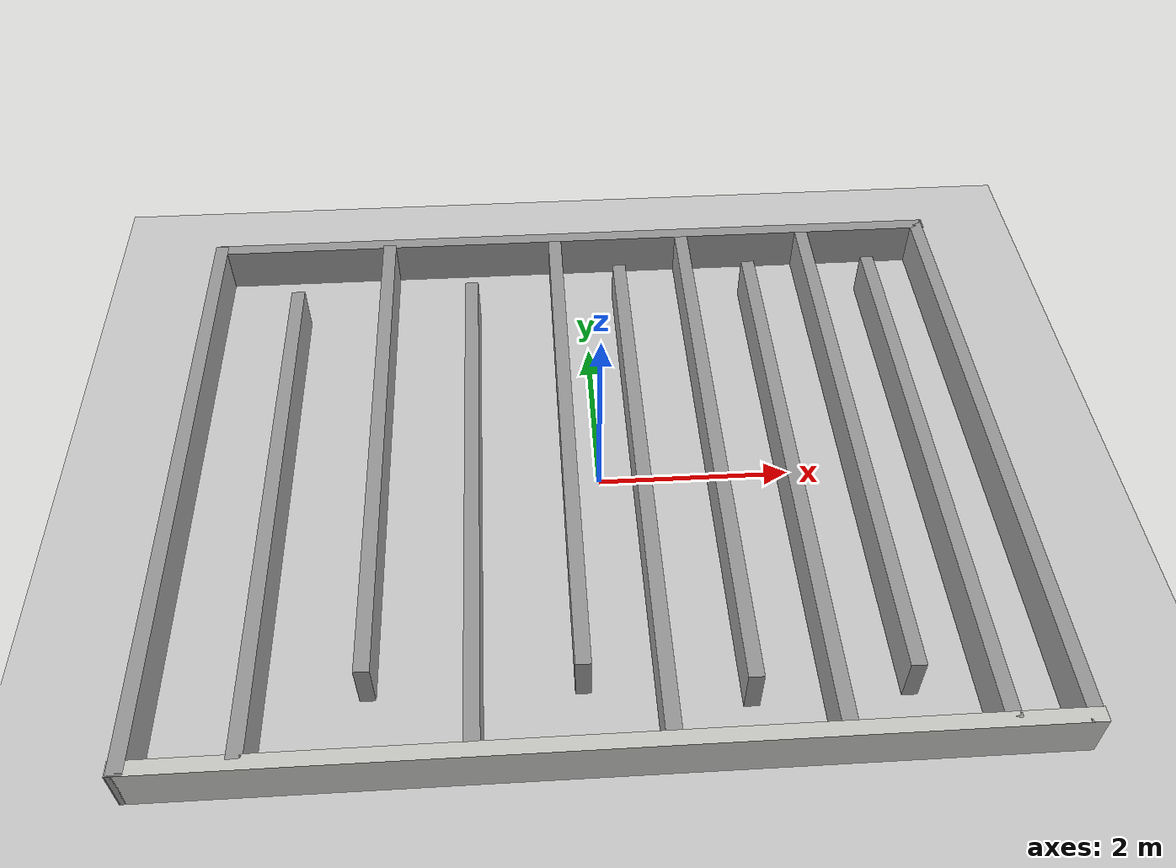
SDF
<sdf version="1.7">
 <world name="default">
  <light name="sun" type="directional">
   <pose>0 0 10 0 -0 0</pose>
   <diffuse>0.8 0.8 0.8 1</diffuse>
   <specular>0.2 0.2 0.2 1</specular>
   <attenuation>
    <range>1000</range>
    <constant>0.9</constant>
    <linear>0.01</linear>
    <quadratic>0.001</quadratic>
   </attenuation>
   <direction>-0.5 0.1 -0.9</direction>
   <spot><inner_angle>0</inner_angle><outer_angle>0</outer_angle><falloff>0</falloff></spot>
  </light>
  <model name="ground_plane">
   <static>1</static>
   <link name="link">
    <collision name="collision">
     <geometry><plane><normal>0 0 1</normal><size>100 100</size></plane></geometry>
     <surface><friction><ode><mu>100</mu><mu2>50</mu2></ode></friction></surface>
    </collision>
    <visual name="visual">
     <cast_shadows>0</cast_shadows>
     <geometry><plane><normal>0 0 1</normal><size>100 100</size></plane></geometry>
     <material>
      <script><uri>file://media/materials/scripts/gazebo.material</uri><name>Gazebo/Grey</name></script>
     </material>
    </visual>
   </link>
  </model>
  <gravity>0 0 -9.8</gravity>
  <magnetic_field>6e-06 2.3e-05 -4.2e-05</magnetic_field>
  <atmosphere type="adiabatic"/>
  <physics type="ode">
   <max_step_size>0.001</max_step_size>
   <real_time_factor>1</real_time_factor>
   <real_time_update_rate>1000</real_time_update_rate>
  </physics>
  <scene><ambient>0.4 0.4 0.4 1</ambient><background>0.7 0.7 0.7 1</background><shadows>1</shadows></scene>
  <audio><device>default</device></audio>
  <spherical_coordinates>
   <surface_model>EARTH_WGS84</surface_model>
   <latitude_deg>0</latitude_deg>
   <longitude_deg>0</longitude_deg>
   <elevation>0</elevation>
   <heading_deg>0</heading_deg>
  </spherical_coordinates>
  <model name="orchard_world">
   <pose>-0.101261 0.077798 0 0 -0 0</pose>
   <link name="Wall_0">
    <collision name="Wall_0_Collision">
     <geometry><box><size>8.59985 0.15 0.5</size></box></geometry>
     <pose>0 0 0.25 0 -0 0</pose>
    </collision>
    <visual name="Wall_0_Visual">
     <pose>0 0 0.25 0 -0 0</pose>
     <geometry><box><size>8.59985 0.15 0.5</size></box></geometry>
     <material>
      <script><uri>file://media/materials/scripts/gazebo.material</uri><name>Gazebo/CeilingTiled</name></script>
      <ambient>1 1 1 1</ambient>
     </material>
     <meta><layer>0</layer></meta>
    </visual>
    <pose>-0 -3.425 0 0 -0 0</pose>
   </link>
   <link name="Wall_10">
    <collision name="Wall_10_Collision">
     <geometry><box><size>8.59091 0.15 0.5</size></box></geometry>
     <pose>0 0 0.25 0 -0 0</pose>
    </collision>
    <visual name="Wall_10_Visual">
     <pose>0 0 0.25 0 -0 0</pose>
     <geometry><box><size>8.59091 0.15 0.5</size></box></geometry>
     <material>
      <script><uri>file://media/materials/scripts/gazebo.material</uri><name>Gazebo/Grey</name></script>
      <ambient>1 1 1 1</ambient>
     </material>
     <meta><layer>0</layer></meta>
    </visual>
    <pose>0.004473 3.425 0 0 -0 0</pose>
   </link>
   <link name="Wall_11">
    <collision name="Wall_11_Collision">
     <geometry><box><size>7 0.15 0.5</size></box></geometry>
     <pose>0 0 0.25 0 -0 0</pose>
    </collision>
    <visual name="Wall_11_Visual">
     <pose>0 0 0.25 0 -0 0</pose>
     <geometry><box><size>7 0.15 0.5</size></box></geometry>
     <material>
      <script><uri>file://media/materials/scripts/gazebo.material</uri><name>Gazebo/Grey</name></script>
      <ambient>1 1 1 1</ambient>
     </material>
     <meta><layer>0</layer></meta>
    </visual>
    <pose>4.20919 0 0 0 -0 -1.5708</pose>
   </link>
   <link name="Wall_22">
    <collision name="Wall_22_Collision">
     <geometry><box><size>6 0.15 0.5</size></box></geometry>
     <pose>0 0 0.25 0 -0 0</pose>
    </collision>
    <visual name="Wall_22_Visual">
     <pose>0 0 0.25 0 -0 0</pose>
     <geometry><box><size>6 0.15 0.5</size></box></geometry>
     <material>
      <script><uri>file://media/materials/scripts/gazebo.material</uri><name>Gazebo/Grey</name></script>
      <ambient>1 1 1 1</ambient>
     </material>
     <meta><layer>0</layer></meta>
    </visual>
    <pose>-3.22908 -0.395419 0 0 -0 -1.5708</pose>
   </link>
   <link name="Wall_26">
    <collision name="Wall_26_Collision">
     <geometry><box><size>6 0.15 0.5</size></box></geometry>
     <pose>0 0 0.25 0 -0 0</pose>
    </collision>
    <visual name="Wall_26_Visual">
     <pose>0 0 0.25 0 -0 0</pose>
     <geometry><box><size>6 0.15 0.5</size></box></geometry>
     <material>
      <script><uri>file://media/materials/scripts/gazebo.material</uri><name>Gazebo/Grey</name></script>
      <ambient>1 1 1 1</ambient>
     </material>
     <meta><layer>0</layer></meta>
    </visual>
    <pose>-2.20508 0.398581 0 0 -0 -1.5708</pose>
   </link>
   <link name="Wall_29">
    <collision name="Wall_29_Collision">
     <geometry><box><size>6 0.15 0.5</size></box></geometry>
     <pose>0 0 0.25 0 -0 0</pose>
    </collision>
    <visual name="Wall_29_Visual">
     <pose>0 0 0.25 0 -0 0</pose>
     <geometry><box><size>6 0.15 0.5</size></box></geometry>
     <material>
      <script><uri>file://media/materials/scripts/gazebo.material</uri><name>Gazebo/Grey</name></script>
      <ambient>1 1 1 1</ambient>
     </material>
     <meta><layer>0</layer></meta>
    </visual>
    <pose>-1.22108 -0.352419 0 0 -0 -1.5708</pose>
   </link>
   <link name="Wall_34">
    <collision name="Wall_34_Collision">
     <geometry><box><size>6 0.15 0.5</size></box></geometry>
     <pose>0 0 0.25 0 -0 0</pose>
    </collision>
    <visual name="Wall_34_Visual">
     <pose>0 0 0.25 0 -0 0</pose>
     <geometry><box><size>6 0.15 0.5</size></box></geometry>
     <material>
      <script><uri>file://media/materials/scripts/gazebo.material</uri><name>Gazebo/Grey</name></script>
      <ambient>1 1 1 1</ambient>
     </material>
     <meta><layer>0</layer></meta>
    </visual>
    <pose>-0.22108 0.356581 0 0 -0 -1.5708</pose>
   </link>
   <link name="Wall_37">
    <collision name="Wall_37_Collision">
     <geometry><box><size>6.25 0.15 0.5</size></box></geometry>
     <pose>0 0 0.25 0 -0 0</pose>
    </collision>
    <visual name="Wall_37_Visual">
     <pose>0 0 0.25 0 -0 0</pose>
     <geometry><box><size>6.25 0.15 0.5</size></box></geometry>
     <material>
      <script><uri>file://media/materials/scripts/gazebo.material</uri><name>Gazebo/Grey</name></script>
      <ambient>1 1 1 1</ambient>
     </material>
     <meta><layer>0</layer></meta>
    </visual>
    <pose>0.52092 -0.264419 0 0 -0 -1.5708</pose>
   </link>
   <link name="Wall_41">
    <collision name="Wall_41_Collision">
     <geometry><box><size>6.25 0.15 0.5</size></box></geometry>
     <pose>0 0 0.25 0 -0 0</pose>
    </collision>
    <visual name="Wall_41_Visual">
     <pose>0 0 0.25 0 -0 0</pose>
     <geometry><box><size>6.25 0.15 0.5</size></box></geometry>
     <material>
      <script><uri>file://media/materials/scripts/gazebo.material</uri><name>Gazebo/Grey</name></script>
      <ambient>1 1 1 1</ambient>
     </material>
     <meta><layer>0</layer></meta>
    </visual>
    <pose>1.31092 0.255581 0 0 -0 -1.5708</pose>
   </link>
   <link name="Wall_44">
    <collision name="Wall_44_Collision">
     <geometry><box><size>6.25 0.15 0.5</size></box></geometry>
     <pose>0 0 0.25 0 -0 0</pose>
    </collision>
    <visual name="Wall_44_Visual">
     <pose>0 0 0.25 0 -0 0</pose>
     <geometry><box><size>6.25 0.15 0.5</size></box></geometry>
     <material>
      <script><uri>file://media/materials/scripts/gazebo.material</uri><name>Gazebo/Grey</name></script>
      <ambient>1 1 1 1</ambient>
     </material>
     <meta><layer>0</layer></meta>
    </visual>
    <pose>2.05192 -0.285419 0 0 -0 -1.5708</pose>
   </link>
   <link name="Wall_48">
    <collision name="Wall_48_Collision">
     <geometry><box><size>6.25 0.15 0.5</size></box></geometry>
     <pose>0 0 0.25 0 -0 0</pose>
    </collision>
    <visual name="Wall_48_Visual">
     <pose>0 0 0.25 0 -0 0</pose>
     <geometry><box><size>6.25 0.15 0.5</size></box></geometry>
     <material>
      <script><uri>file://media/materials/scripts/gazebo.material</uri><name>Gazebo/Grey</name></script>
      <ambient>1 1 1 1</ambient>
     </material>
     <meta><layer>0</layer></meta>
    </visual>
    <pose>2.78192 0.286581 0 0 -0 -1.5708</pose>
   </link>
   <link name="Wall_50">
    <collision name="Wall_50_Collision">
     <geometry><box><size>6.25 0.15 0.5</size></box></geometry>
     <pose>0 0 0.25 0 -0 0</pose>
    </collision>
    <visual name="Wall_50_Visual">
     <pose>0 0 0.25 0 -0 0</pose>
     <geometry><box><size>6.25 0.15 0.5</size></box></geometry>
     <material>
      <script><uri>file://media/materials/scripts/gazebo.material</uri><name>Gazebo/Grey</name></script>
      <ambient>1 1 1 1</ambient>
     </material>
     <meta><layer>0</layer></meta>
    </visual>
    <pose>3.48392 -0.290419 0 0 -0 -1.5708</pose>
   </link>
   <link name="Wall_9">
    <collision name="Wall_9_Collision">
     <geometry><box><size>7 0.15 0.5</size></box></geometry>
     <pose>0 0 0.25 0 -0 0</pose>
    </collision>
    <visual name="Wall_9_Visual">
     <pose>0 0 0.25 0 -0 0</pose>
     <geometry><box><size>7 0.15 0.5</size></box></geometry>
     <material>
      <script><uri>file://media/materials/scripts/gazebo.material</uri><name>Gazebo/Grey</name></script>
      <ambient>1 1 1 1</ambient>
     </material>
     <meta><layer>0</layer></meta>
    </visual>
    <pose>-4.21598 0 0 0 -0 1.5708</pose>
   </link>
   <static>1</static>
  </model>
 </world>
</sdf>
